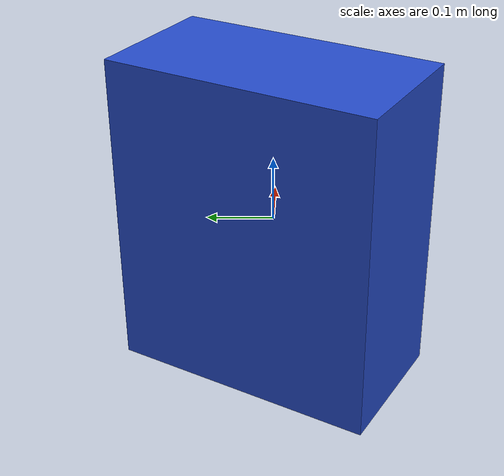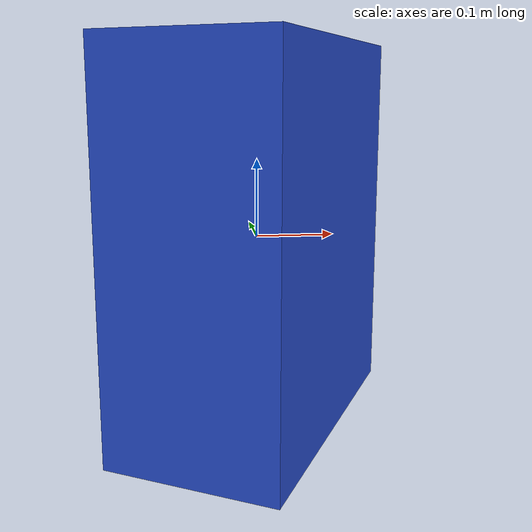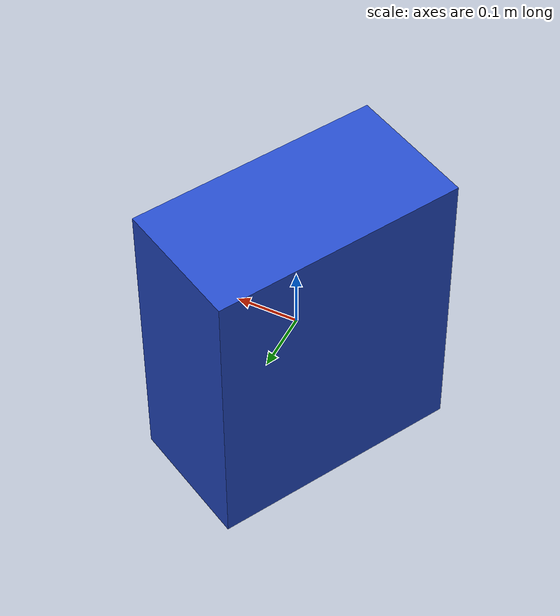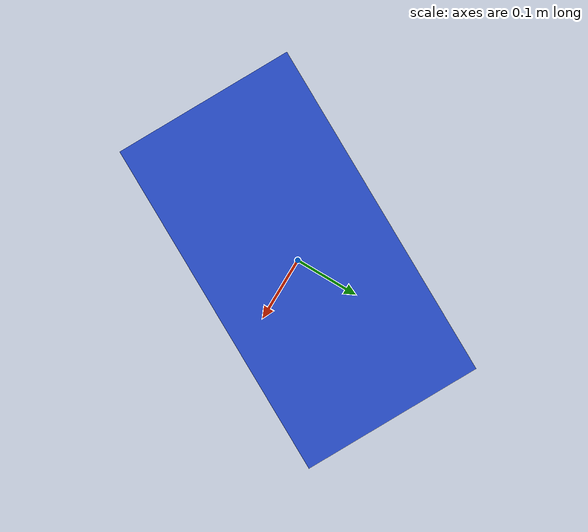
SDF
<sdf version="1.6"><model name="model_15"><link name="link"><pose>0 0 0 0 0 2.6502516151752222</pose><gravity>true</gravity><static>true</static><inertial><mass>1.0</mass><inertia><ixx>0.16666</ixx><ixy>0</ixy><ixz>0</ixz><iyy>0.16666</iyy><iyz>0</iyz><izz>0.16666</izz></inertia></inertial><collision name="collision"><geometry><box><size>0.22089919441067718 0.4186282059717521 0.5</size></box></geometry></collision><visual name="visual"><geometry><box><size>0.22089919441067718 0.4186282059717521 0.5</size></box></geometry><material><script><name>Gazebo/Blue</name><uri>file://media/materials/scripts/gazebo.material</uri></script></material></visual></link></model></sdf>
